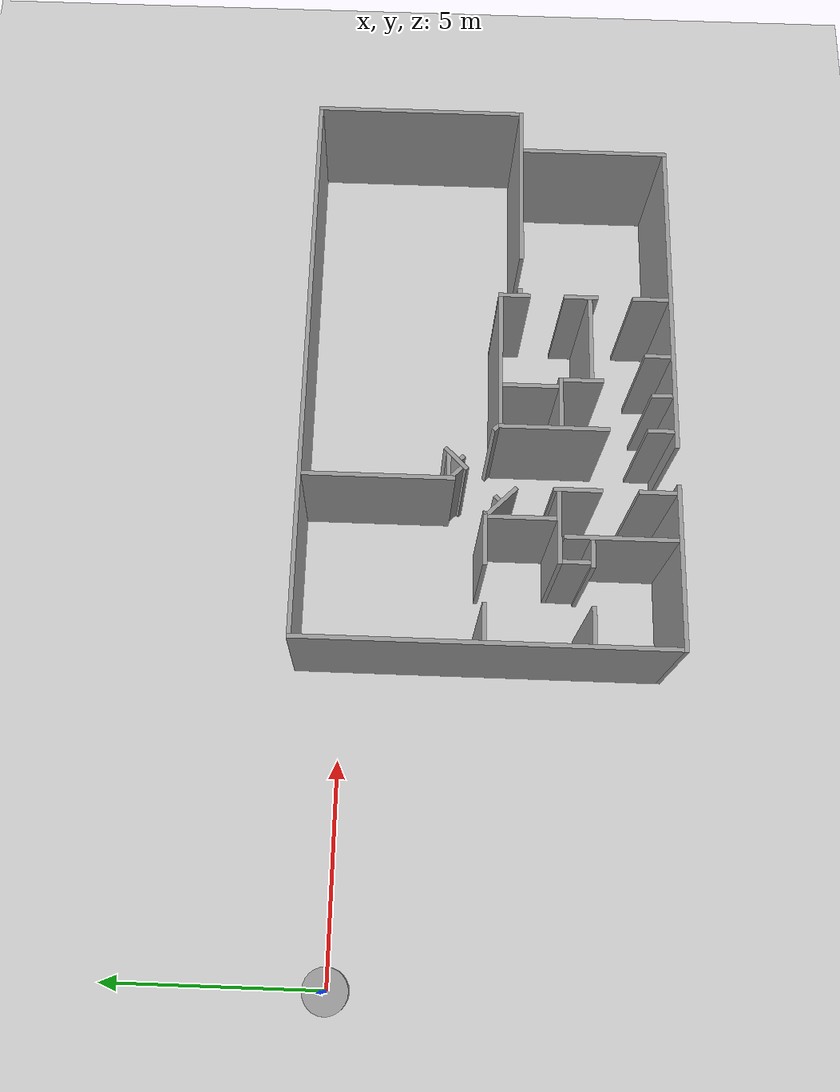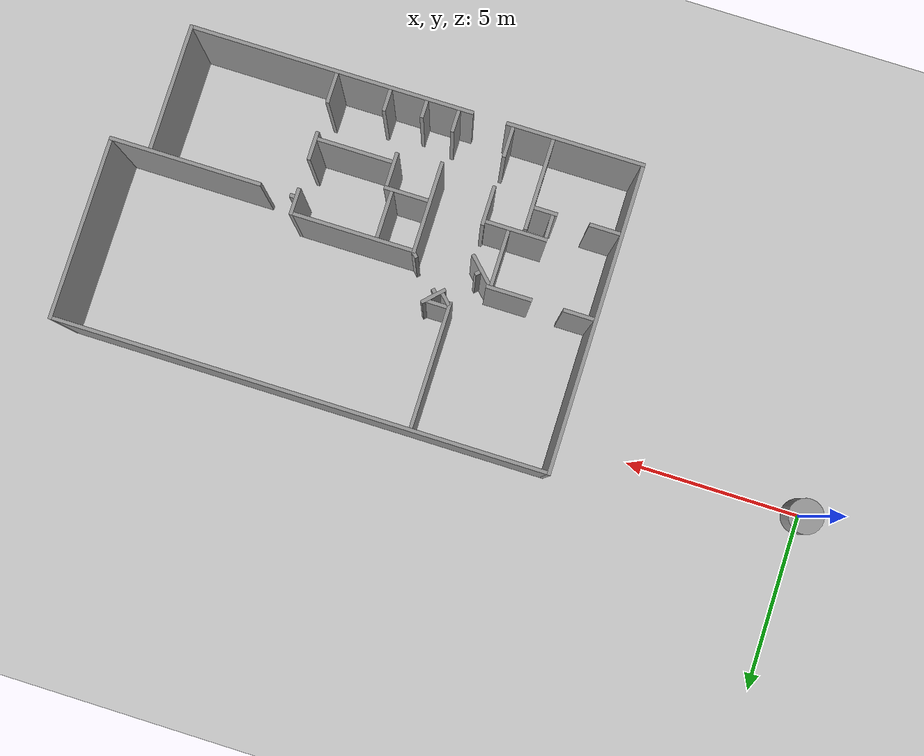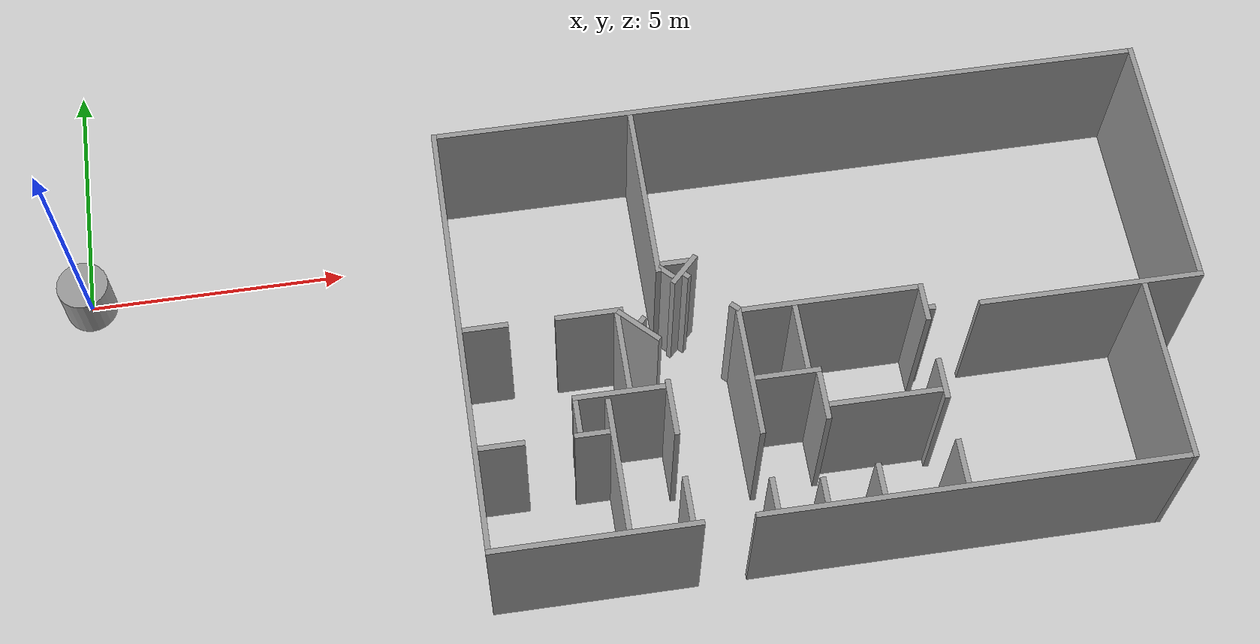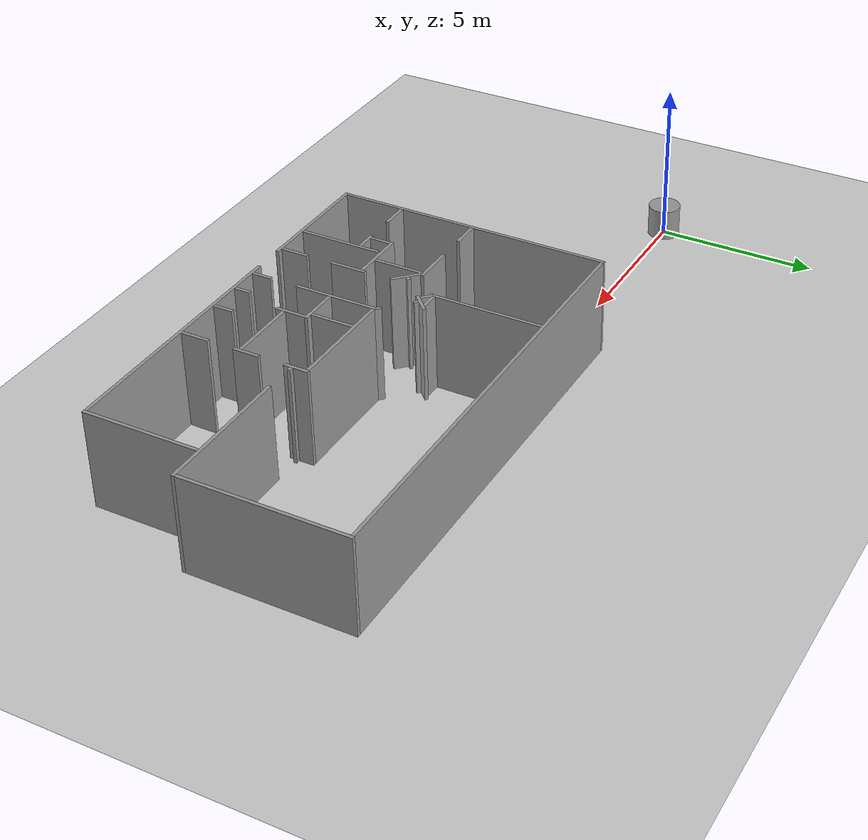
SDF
<sdf version="1.6">
 <world name="default">
  <light name="sun" type="directional">
   <pose>0 0 10 0 -0 0</pose>
   <diffuse>0.8 0.8 0.8 1</diffuse>
   <specular>0.1 0.1 0.1 1</specular>
   <attenuation>
    <range>1000</range>
    <constant>0.9</constant>
    <linear>0.01</linear>
    <quadratic>0.001</quadratic>
   </attenuation>
   <direction>-0.5 0.5 -1</direction>
  </light>
  <model name="ground_plane">
   <static>1</static>
   <link name="link">
    <collision name="collision">
     <geometry><plane><normal>0 0 1</normal><size>100 100</size></plane></geometry>
     <surface><friction><ode><mu>100</mu><mu2>50</mu2></ode></friction></surface>
    </collision>
    <visual name="visual">
     <cast_shadows>0</cast_shadows>
     <geometry><plane><normal>0 0 1</normal><size>100 100</size></plane></geometry>
     <material>
      <script><uri>file://media/materials/scripts/gazebo.material</uri><name>Gazebo/Grey</name></script>
     </material>
    </visual>
   </link>
  </model>
  <gravity>0 0 -9.8</gravity>
  <magnetic_field>6e-06 2.3e-05 -4.2e-05</magnetic_field>
  <atmosphere type="adiabatic"/>
  <physics name="default_physics" default="0" type="ode">
   <max_step_size>0.001</max_step_size>
   <real_time_factor>1</real_time_factor>
   <real_time_update_rate>1000</real_time_update_rate>
  </physics>
  <scene><ambient>0.4 0.4 0.4 1</ambient><background>0.7 0.7 0.7 1</background><shadows>1</shadows></scene>
  <spherical_coordinates>
   <surface_model>EARTH_WGS84</surface_model>
   <latitude_deg>0</latitude_deg>
   <longitude_deg>0</longitude_deg>
   <elevation>0</elevation>
   <heading_deg>0</heading_deg>
  </spherical_coordinates>
  <model name="three_walls">
   <link name="Wall_0">
    <collision name="Wall_0_Collision">
     <geometry><box><size>3.8508 0.1016 3.048</size></box></geometry>
     <pose>0 0 1.524 0 -0 0</pose>
    </collision>
    <visual name="Wall_0_Visual">
     <pose>0 0 1.524 0 -0 0</pose>
     <geometry><box><size>3.8508 0.1016 3.048</size></box></geometry>
     <material>
      <script><uri>file://media/materials/scripts/gazebo.material</uri><name>Gazebo/Grey</name></script>
      <ambient>1 1 1 1</ambient>
     </material>
    </visual>
    <pose>9.03622 -7.46943 0 0 -0 3.14159</pose>
   </link>
   <link name="Wall_1">
    <collision name="Wall_1_Collision">
     <geometry><box><size>8.54075 0.1016 3.048</size></box></geometry>
     <pose>0 0 1.524 0 -0 0</pose>
    </collision>
    <visual name="Wall_1_Visual">
     <pose>0 0 1.524 0 -0 0</pose>
     <geometry><box><size>8.54075 0.1016 3.048</size></box></geometry>
     <material>
      <script><uri>file://media/materials/scripts/gazebo.material</uri><name>Gazebo/Grey</name></script>
      <ambient>1 1 1 1</ambient>
     </material>
    </visual>
    <pose>7.16162 -3.14825 0 0 -0 1.5708</pose>
   </link>
   <link name="Wall_2">
    <collision name="Wall_2_Collision">
     <geometry><box><size>13.5826 0.1016 3.048</size></box></geometry>
     <pose>0 0 1.524 0 -0 0</pose>
    </collision>
    <visual name="Wall_2_Visual">
     <pose>0 0 1.524 0 -0 0</pose>
     <geometry><box><size>13.5826 0.1016 3.048</size></box></geometry>
     <material>
      <script><uri>file://media/materials/scripts/gazebo.material</uri><name>Gazebo/Grey</name></script>
      <ambient>1 1 1 1</ambient>
     </material>
    </visual>
    <pose>14.0037 1.07132 0 0 -0 0</pose>
   </link>
   <link name="Wall_3">
    <collision name="Wall_3_Collision">
     <geometry><box><size>3.52425 0.1016 3.048</size></box></geometry>
     <pose>0 0 1.524 0 -0 0</pose>
    </collision>
    <visual name="Wall_3_Visual">
     <pose>0 0 1.524 0 -0 0</pose>
     <geometry><box><size>3.52425 0.1016 3.048</size></box></geometry>
     <material>
      <script><uri>file://media/materials/scripts/gazebo.material</uri><name>Gazebo/Grey</name></script>
      <ambient>1 1 1 1</ambient>
     </material>
    </visual>
    <pose>19.7664 -5.7581 0 0 -0 1.5708</pose>
   </link>
   <link name="Wall_4">
    <collision name="Wall_4_Collision">
     <geometry><box><size>4.2308 0.1016 3.048</size></box></geometry>
     <pose>0 0 1.524 0 -0 0</pose>
    </collision>
    <visual name="Wall_4_Visual">
     <pose>0 0 1.524 0 -0 0</pose>
     <geometry><box><size>4.2308 0.1016 3.048</size></box></geometry>
     <material>
      <script><uri>file://media/materials/scripts/gazebo.material</uri><name>Gazebo/Grey</name></script>
      <ambient>1 1 1 1</ambient>
     </material>
    </visual>
    <pose>18.7813 -3.94518 0 0 -0 3.14159</pose>
   </link>
   <link name="Wall_5">
    <collision name="Wall_5_Collision">
     <geometry><box><size>5.0165 0.1016 3.048</size></box></geometry>
     <pose>0 0 1.524 0 -0 0</pose>
    </collision>
    <visual name="Wall_5_Visual">
     <pose>0 0 1.524 0 -0 0</pose>
     <geometry><box><size>5.0165 0.1016 3.048</size></box></geometry>
     <material>
      <script><uri>file://media/materials/scripts/gazebo.material</uri><name>Gazebo/Grey</name></script>
      <ambient>1 1 1 1</ambient>
     </material>
    </visual>
    <pose>20.8459 -1.38613 0 0 -0 1.5708</pose>
   </link>
   <link name="Wall_6">
    <collision name="Wall_6_Collision">
     <geometry><box><size>2.5508 0.1016 3.048</size></box></geometry>
     <pose>0 0 1.524 0 -0 0</pose>
    </collision>
    <visual name="Wall_6_Visual">
     <pose>0 0 1.524 0 -0 0</pose>
     <geometry><box><size>2.5508 0.1016 3.048</size></box></geometry>
     <material>
      <script><uri>file://media/materials/scripts/gazebo.material</uri><name>Gazebo/Grey</name></script>
      <ambient>1 1 1 1</ambient>
     </material>
    </visual>
    <pose>12.267 -4.68083 0 0 -0 1.5708</pose>
   </link>
   <link name="Wall_7">
    <collision name="Wall_7_Collision">
     <geometry><box><size>0.7508 0.1016 3.048</size></box></geometry>
     <pose>0 0 1.524 0 -0 0</pose>
    </collision>
    <visual name="Wall_7_Visual">
     <pose>0 0 1.524 0 -0 0</pose>
     <geometry><box><size>0.7508 0.1016 3.048</size></box></geometry>
     <material>
      <script><uri>file://media/materials/scripts/gazebo.material</uri><name>Gazebo/Grey</name></script>
      <ambient>1 1 1 1</ambient>
     </material>
    </visual>
    <pose>15.6706 -3.78083 0 0 -0 1.5708</pose>
   </link>
   <link name="Wall_8">
    <collision name="Wall_8_Collision">
     <geometry><box><size>3.302 0.1016 3.048</size></box></geometry>
     <pose>0 0 1.524 0 -0 0</pose>
    </collision>
    <visual name="Wall_8_Visual">
     <pose>0 0 1.524 0 -0 0</pose>
     <geometry><box><size>3.302 0.1016 3.048</size></box></geometry>
     <material>
      <script><uri>file://media/materials/scripts/gazebo.material</uri><name>Gazebo/Grey</name></script>
      <ambient>1 1 1 1</ambient>
     </material>
    </visual>
    <pose>13.9688 -3.45623 0 0 -0 3.14159</pose>
   </link>
   <link name="Wall_9">
    <collision name="Wall_9_Collision">
     <geometry><box><size>0.200057 0.1015 3.048</size></box></geometry>
     <pose>0 0 1.524 0 -0 0</pose>
    </collision>
    <visual name="Wall_9_Visual">
     <pose>0 0 1.524 0 -0 0</pose>
     <geometry><box><size>0.200057 0.1015 3.048</size></box></geometry>
     <material>
      <script><uri>file://media/materials/scripts/gazebo.material</uri><name>Gazebo/Grey</name></script>
      <ambient>1 1 1 1</ambient>
     </material>
    </visual>
    <pose>12.2206 -3.37062 0 0 0 -0.785398</pose>
   </link>
   <link name="Wall_10">
    <collision name="Wall_10_Collision">
     <geometry><box><size>1.26264 0.1015 3.048</size></box></geometry>
     <pose>0 0 1.524 0 -0 0</pose>
    </collision>
    <visual name="Wall_10_Visual">
     <pose>0 0 1.524 0 -0 0</pose>
     <geometry><box><size>1.26264 0.1015 3.048</size></box></geometry>
     <material>
      <script><uri>file://media/materials/scripts/gazebo.material</uri><name>Gazebo/Grey</name></script>
      <ambient>1 1 1 1</ambient>
     </material>
    </visual>
    <pose>9.54854 -3.13238 0 0 -0 0</pose>
   </link>
   <link name="Wall_11">
    <collision name="Wall_11_Collision">
     <geometry><box><size>0.969558 0.1015 3.048</size></box></geometry>
     <pose>0 0 1.524 0 -0 0</pose>
    </collision>
    <visual name="Wall_11_Visual">
     <pose>0 0 1.524 0 -0 0</pose>
     <geometry><box><size>0.969558 0.1015 3.048</size></box></geometry>
     <material>
      <script><uri>file://media/materials/scripts/gazebo.material</uri><name>Gazebo/Grey</name></script>
      <ambient>1 1 1 1</ambient>
     </material>
    </visual>
    <pose>10.4149 -3.49005 0 0 0 -0.785398</pose>
   </link>
   <link name="Wall_12">
    <collision name="Wall_12_Collision">
     <geometry><box><size>0.8492 0.1016 3.048</size></box></geometry>
     <pose>0 0 1.524 0 -0 0</pose>
    </collision>
    <visual name="Wall_12_Visual">
     <pose>0 0 1.524 0 -0 0</pose>
     <geometry><box><size>0.8492 0.1016 3.048</size></box></geometry>
     <material>
      <script><uri>file://media/materials/scripts/gazebo.material</uri><name>Gazebo/Grey</name></script>
      <ambient>1 1 1 1</ambient>
     </material>
    </visual>
    <pose>10.7577 -6.99403 0 0 0 -1.5708</pose>
   </link>
   <link name="Wall_13">
    <collision name="Wall_13_Collision">
     <geometry><box><size>3.47544 0.1015 3.048</size></box></geometry>
     <pose>0 0 1.524 0 -0 0</pose>
    </collision>
    <visual name="Wall_13_Visual">
     <pose>0 0 1.524 0 -0 0</pose>
     <geometry><box><size>3.47544 0.1015 3.048</size></box></geometry>
     <material>
      <script><uri>file://media/materials/scripts/gazebo.material</uri><name>Gazebo/Grey</name></script>
      <ambient>1 1 1 1</ambient>
     </material>
    </visual>
    <pose>10.9462 -0.717198 0 0 0 -1.5708</pose>
   </link>
   <link name="Wall_14">
    <collision name="Wall_14_Collision">
     <geometry><box><size>0.360596 0.1015 3.048</size></box></geometry>
     <pose>0 0 1.524 0 -0 0</pose>
    </collision>
    <visual name="Wall_14_Visual">
     <pose>0 0 1.524 0 -0 0</pose>
     <geometry><box><size>0.360596 0.1015 3.048</size></box></geometry>
     <material>
      <script><uri>file://media/materials/scripts/gazebo.material</uri><name>Gazebo/Grey</name></script>
      <ambient>1 1 1 1</ambient>
     </material>
    </visual>
    <pose>11.0886 -2.47465 0 0 0 -0.785398</pose>
   </link>
   <link name="Wall_15">
    <collision name="Wall_15_Collision">
     <geometry><box><size>0.722642 0.1015 3.048</size></box></geometry>
     <pose>0 0 1.524 0 -0 0</pose>
    </collision>
    <visual name="Wall_15_Visual">
     <pose>0 0 1.524 0 -0 0</pose>
     <geometry><box><size>0.722642 0.1015 3.048</size></box></geometry>
     <material>
      <script><uri>file://media/materials/scripts/gazebo.material</uri><name>Gazebo/Grey</name></script>
      <ambient>1 1 1 1</ambient>
     </material>
    </visual>
    <pose>11.4241 -2.46598 0 0 -0 0.785398</pose>
   </link>
   <link name="Wall_16">
    <collision name="Wall_16_Collision">
     <geometry><box><size>0.574782 0.1015 3.048</size></box></geometry>
     <pose>0 0 1.524 0 -0 0</pose>
    </collision>
    <visual name="Wall_16_Visual">
     <pose>0 0 1.524 0 -0 0</pose>
     <geometry><box><size>0.574782 0.1015 3.048</size></box></geometry>
     <material>
      <script><uri>file://media/materials/scripts/gazebo.material</uri><name>Gazebo/Grey</name></script>
      <ambient>1 1 1 1</ambient>
     </material>
    </visual>
    <pose>11.2844 -2.29721 0 0 -0 3.14159</pose>
   </link>
   <link name="Wall_17">
    <collision name="Wall_17_Collision">
     <geometry><box><size>0.127 0.1016 3.048</size></box></geometry>
     <pose>0 0 1.524 0 -0 0</pose>
    </collision>
    <visual name="Wall_17_Visual">
     <pose>0 0 1.524 0 -0 0</pose>
     <geometry><box><size>0.127 0.1016 3.048</size></box></geometry>
     <material>
      <script><uri>file://media/materials/scripts/gazebo.material</uri><name>Gazebo/Grey</name></script>
      <ambient>1 1 1 1</ambient>
     </material>
    </visual>
    <pose>11.4508 -2.60088 0 0 -0 2.35619</pose>
   </link>
   <link name="Wall_18">
    <collision name="Wall_18_Collision">
     <geometry><box><size>2.54 0.1016 3.048</size></box></geometry>
     <pose>0 0 1.524 0 -0 0</pose>
    </collision>
    <visual name="Wall_18_Visual">
     <pose>0 0 1.524 0 -0 0</pose>
     <geometry><box><size>2.54 0.1016 3.048</size></box></geometry>
     <material>
      <script><uri>file://media/materials/scripts/gazebo.material</uri><name>Gazebo/Grey</name></script>
      <ambient>1 1 1 1</ambient>
     </material>
    </visual>
    <pose>9.64008 -6.14863 0 0 -0 1.5708</pose>
   </link>
   <link name="Wall_19">
    <collision name="Wall_19_Collision">
     <geometry><box><size>1.7018 0.1016 3.048</size></box></geometry>
     <pose>0 0 1.524 0 -0 0</pose>
    </collision>
    <visual name="Wall_19_Visual">
     <pose>0 0 1.524 0 -0 0</pose>
     <geometry><box><size>1.7018 0.1016 3.048</size></box></geometry>
     <material>
      <script><uri>file://media/materials/scripts/gazebo.material</uri><name>Gazebo/Grey</name></script>
      <ambient>1 1 1 1</ambient>
     </material>
    </visual>
    <pose>9.85598 -4.77703 0 0 -0 3.14159</pose>
   </link>
   <link name="Wall_20">
    <collision name="Wall_20_Collision">
     <geometry><box><size>0.635 0.1016 3.048</size></box></geometry>
     <pose>0 0 1.524 0 -0 0</pose>
    </collision>
    <visual name="Wall_20_Visual">
     <pose>0 0 1.524 0 -0 0</pose>
     <geometry><box><size>0.635 0.1016 3.048</size></box></geometry>
     <material>
      <script><uri>file://media/materials/scripts/gazebo.material</uri><name>Gazebo/Grey</name></script>
      <ambient>1 1 1 1</ambient>
     </material>
    </visual>
    <pose>9.05588 -5.14533 0 0 0 -1.5708</pose>
   </link>
   <link name="Wall_21">
    <collision name="Wall_21_Collision">
     <geometry><box><size>0.6492 0.1016 3.048</size></box></geometry>
     <pose>0 0 1.524 0 -0 0</pose>
    </collision>
    <visual name="Wall_21_Visual">
     <pose>0 0 1.524 0 -0 0</pose>
     <geometry><box><size>0.6492 0.1016 3.048</size></box></geometry>
     <material>
      <script><uri>file://media/materials/scripts/gazebo.material</uri><name>Gazebo/Grey</name></script>
      <ambient>1 1 1 1</ambient>
     </material>
    </visual>
    <pose>9.26468 -5.51363 0 0 -0 3.14159</pose>
   </link>
   <link name="Wall_22">
    <collision name="Wall_22_Collision">
     <geometry><box><size>1.54305 0.1015 3.048</size></box></geometry>
     <pose>0 0 1.524 0 -0 0</pose>
    </collision>
    <visual name="Wall_22_Visual">
     <pose>0 0 1.524 0 -0 0</pose>
     <geometry><box><size>1.54305 0.1015 3.048</size></box></geometry>
     <material>
      <script><uri>file://media/materials/scripts/gazebo.material</uri><name>Gazebo/Grey</name></script>
      <ambient>1 1 1 1</ambient>
     </material>
    </visual>
    <pose>10.0572 -3.9547 0 0 0 -1.5708</pose>
   </link>
   <link name="Wall_32">
    <collision name="Wall_32_Collision">
     <geometry><box><size>2.0828 0.1016 3.048</size></box></geometry>
     <pose>0 0 1.524 0 -0 0</pose>
    </collision>
    <visual name="Wall_32_Visual">
     <pose>0 0 1.524 0 -0 0</pose>
     <geometry><box><size>2.0828 0.1016 3.048</size></box></geometry>
     <material>
      <script><uri>file://media/materials/scripts/gazebo.material</uri><name>Gazebo/Grey</name></script>
      <ambient>1 1 1 1</ambient>
     </material>
    </visual>
    <pose>14.5784 -5.56443 0 0 -0 3.14159</pose>
   </link>
   <link name="Wall_33">
    <collision name="Wall_33_Collision">
     <geometry><box><size>1.2192 0.1016 3.048</size></box></geometry>
     <pose>0 0 1.524 0 -0 0</pose>
    </collision>
    <visual name="Wall_33_Visual">
     <pose>0 0 1.524 0 -0 0</pose>
     <geometry><box><size>1.2192 0.1016 3.048</size></box></geometry>
     <material>
      <script><uri>file://media/materials/scripts/gazebo.material</uri><name>Gazebo/Grey</name></script>
      <ambient>1 1 1 1</ambient>
     </material>
    </visual>
    <pose>12.9274 -4.85323 0 0 -0 0</pose>
   </link>
   <link name="Wall_34">
    <collision name="Wall_34_Collision">
     <geometry><box><size>0.9398 0.1016 3.048</size></box></geometry>
     <pose>0 0 1.524 0 -0 0</pose>
    </collision>
    <visual name="Wall_34_Visual">
     <pose>0 0 1.524 0 -0 0</pose>
     <geometry><box><size>0.9398 0.1016 3.048</size></box></geometry>
     <material>
      <script><uri>file://media/materials/scripts/gazebo.material</uri><name>Gazebo/Grey</name></script>
      <ambient>1 1 1 1</ambient>
     </material>
    </visual>
    <pose>13.4862 -5.37393 0 0 0 -1.5708</pose>
   </link>
   <link name="Wall_35">
    <collision name="Wall_35_Collision">
     <geometry><box><size>1.2954 0.1016 3.048</size></box></geometry>
     <pose>0 0 1.524 0 -0 0</pose>
    </collision>
    <visual name="Wall_35_Visual">
     <pose>0 0 1.524 0 -0 0</pose>
     <geometry><box><size>1.2954 0.1016 3.048</size></box></geometry>
     <material>
      <script><uri>file://media/materials/scripts/gazebo.material</uri><name>Gazebo/Grey</name></script>
      <ambient>1 1 1 1</ambient>
     </material>
    </visual>
    <pose>13.3084 -4.15473 0 0 -0 1.5708</pose>
   </link>
   <link name="Wall_36">
    <collision name="Wall_36_Collision">
     <geometry><box><size>0.4826 0.1016 3.048</size></box></geometry>
     <pose>0 0 1.524 0 -0 0</pose>
    </collision>
    <visual name="Wall_36_Visual">
     <pose>0 0 1.524 0 -0 0</pose>
     <geometry><box><size>0.4826 0.1016 3.048</size></box></geometry>
     <material>
      <script><uri>file://media/materials/scripts/gazebo.material</uri><name>Gazebo/Grey</name></script>
      <ambient>1 1 1 1</ambient>
     </material>
    </visual>
    <pose>13.156 -7.17733 0 0 -0 1.5708</pose>
   </link>
   <link name="Wall_37">
    <collision name="Wall_37_Collision">
     <geometry><box><size>0.6096 0.1016 3.048</size></box></geometry>
     <pose>0 0 1.524 0 -0 0</pose>
    </collision>
    <visual name="Wall_37_Visual">
     <pose>0 0 1.524 0 -0 0</pose>
     <geometry><box><size>0.6096 0.1016 3.048</size></box></geometry>
     <material>
      <script><uri>file://media/materials/scripts/gazebo.material</uri><name>Gazebo/Grey</name></script>
      <ambient>1 1 1 1</ambient>
     </material>
    </visual>
    <pose>14.172 -7.11383 0 0 -0 1.5708</pose>
   </link>
   <link name="Wall_38">
    <collision name="Wall_38_Collision">
     <geometry><box><size>0.1292 0.1016 3.048</size></box></geometry>
     <pose>0 0 1.524 0 -0 0</pose>
    </collision>
    <visual name="Wall_38_Visual">
     <pose>0 0 1.524 0 -0 0</pose>
     <geometry><box><size>0.1292 0.1016 3.048</size></box></geometry>
     <material>
      <script><uri>file://media/materials/scripts/gazebo.material</uri><name>Gazebo/Grey</name></script>
      <ambient>1 1 1 1</ambient>
     </material>
    </visual>
    <pose>15.786 -3.90518 0 0 -0 0</pose>
   </link>
   <link name="Wall_39">
    <collision name="Wall_39_Collision">
     <geometry><box><size>0.8 0.1016 3.048</size></box></geometry>
     <pose>0 0 1.524 0 -0 0</pose>
    </collision>
    <visual name="Wall_39_Visual">
     <pose>0 0 1.524 0 -0 0</pose>
     <geometry><box><size>0.8 0.1016 3.048</size></box></geometry>
     <material>
      <script><uri>file://media/materials/scripts/gazebo.material</uri><name>Gazebo/Grey</name></script>
      <ambient>1 1 1 1</ambient>
     </material>
    </visual>
    <pose>15.6706 -5.35323 0 0 0 -1.5708</pose>
   </link>
   <link name="Wall_40">
    <collision name="Wall_40_Collision">
     <geometry><box><size>0.8492 0.1016 3.048</size></box></geometry>
     <pose>0 0 1.524 0 -0 0</pose>
    </collision>
    <visual name="Wall_40_Visual">
     <pose>0 0 1.524 0 -0 0</pose>
     <geometry><box><size>0.8492 0.1016 3.048</size></box></geometry>
     <material>
      <script><uri>file://media/materials/scripts/gazebo.material</uri><name>Gazebo/Grey</name></script>
      <ambient>1 1 1 1</ambient>
     </material>
    </visual>
    <pose>15.6706 -6.99403 0 0 0 -1.5708</pose>
   </link>
   <link name="Wall_41">
    <collision name="Wall_41_Collision">
     <geometry><box><size>7.84855 0.1016 3.048</size></box></geometry>
     <pose>0 0 1.524 0 -0 0</pose>
    </collision>
    <visual name="Wall_41_Visual">
     <pose>0 0 1.524 0 -0 0</pose>
     <geometry><box><size>7.84855 0.1016 3.048</size></box></geometry>
     <material>
      <script><uri>file://media/materials/scripts/gazebo.material</uri><name>Gazebo/Grey</name></script>
      <ambient>1 1 1 1</ambient>
     </material>
    </visual>
    <pose>15.7913 -7.46943 0 0 -0 0</pose>
   </link>
   <link name="Wall_42">
    <collision name="Wall_42_Collision">
     <geometry><box><size>0.8492 0.1016 3.048</size></box></geometry>
     <pose>0 0 1.524 0 -0 0</pose>
    </collision>
    <visual name="Wall_42_Visual">
     <pose>0 0 1.524 0 -0 0</pose>
     <geometry><box><size>0.8492 0.1016 3.048</size></box></geometry>
     <material>
      <script><uri>file://media/materials/scripts/gazebo.material</uri><name>Gazebo/Grey</name></script>
      <ambient>1 1 1 1</ambient>
     </material>
    </visual>
    <pose>7.63702 -5.51363 0 0 -0 3.14159</pose>
   </link>
   <link name="Wall_43">
    <collision name="Wall_43_Collision">
     <geometry><box><size>1.1 0.1016 3.048</size></box></geometry>
     <pose>0 0 1.524 0 -0 0</pose>
    </collision>
    <visual name="Wall_43_Visual">
     <pose>0 0 1.524 0 -0 0</pose>
     <geometry><box><size>1.1 0.1016 3.048</size></box></geometry>
     <material>
      <script><uri>file://media/materials/scripts/gazebo.material</uri><name>Gazebo/Grey</name></script>
      <ambient>1 1 1 1</ambient>
     </material>
    </visual>
    <pose>10.7577 -5.20323 0 0 0 -1.5708</pose>
   </link>
   <link name="Wall_44">
    <collision name="Wall_44_Collision">
     <geometry><box><size>0.8492 0.1016 3.048</size></box></geometry>
     <pose>0 0 1.524 0 -0 0</pose>
    </collision>
    <visual name="Wall_44_Visual">
     <pose>0 0 1.524 0 -0 0</pose>
     <geometry><box><size>0.8492 0.1016 3.048</size></box></geometry>
     <material>
      <script><uri>file://media/materials/scripts/gazebo.material</uri><name>Gazebo/Grey</name></script>
      <ambient>1 1 1 1</ambient>
     </material>
    </visual>
    <pose>7.63702 -3.13238 0 0 -0 3.14159</pose>
   </link>
   <link name="Wall_45">
    <collision name="Wall_45_Collision">
     <geometry><box><size>0.6096 0.1016 3.048</size></box></geometry>
     <pose>0 0 1.524 0 -0 0</pose>
    </collision>
    <visual name="Wall_45_Visual">
     <pose>0 0 1.524 0 -0 0</pose>
     <geometry><box><size>0.6096 0.1016 3.048</size></box></geometry>
     <material>
      <script><uri>file://media/materials/scripts/gazebo.material</uri><name>Gazebo/Grey</name></script>
      <ambient>1 1 1 1</ambient>
     </material>
    </visual>
    <pose>12.267 -7.11383 0 0 0 -1.5708</pose>
   </link>
   <link name="Wall_46">
    <collision name="Wall_46_Collision">
     <geometry><box><size>0.1492 0.1016 3.048</size></box></geometry>
     <pose>0 0 1.524 0 -0 0</pose>
    </collision>
    <visual name="Wall_46_Visual">
     <pose>0 0 1.524 0 -0 0</pose>
     <geometry><box><size>0.1492 0.1016 3.048</size></box></geometry>
     <material>
      <script><uri>file://media/materials/scripts/gazebo.material</uri><name>Gazebo/Grey</name></script>
      <ambient>1 1 1 1</ambient>
     </material>
    </visual>
    <pose>10.4961 -3.39394 0 0 -0 0.785398</pose>
   </link>
   <static>1</static>
  </model>
  <plugin name="collision_map_creator" filename="libcollision_map_creator.so"/>
  <model name="unit_cylinder_0">
   <pose>0 0 0.499991 0 -0 0</pose>
   <link name="link">
    <inertial>
     <mass>1</mass>
     <inertia><ixx>0.145833</ixx><ixy>0</ixy><ixz>0</ixz><iyy>0.145833</iyy><iyz>0</iyz><izz>0.125</izz></inertia>
    </inertial>
    <collision name="collision">
     <geometry><cylinder><radius>0.5</radius><length>1</length></cylinder></geometry>
    </collision>
    <visual name="visual">
     <geometry><cylinder><radius>0.5</radius><length>1</length></cylinder></geometry>
     <material>
      <script><name>Gazebo/Grey</name><uri>file://media/materials/scripts/gazebo.material</uri></script>
     </material>
    </visual>
   </link>
  </model>
 </world>
</sdf>
